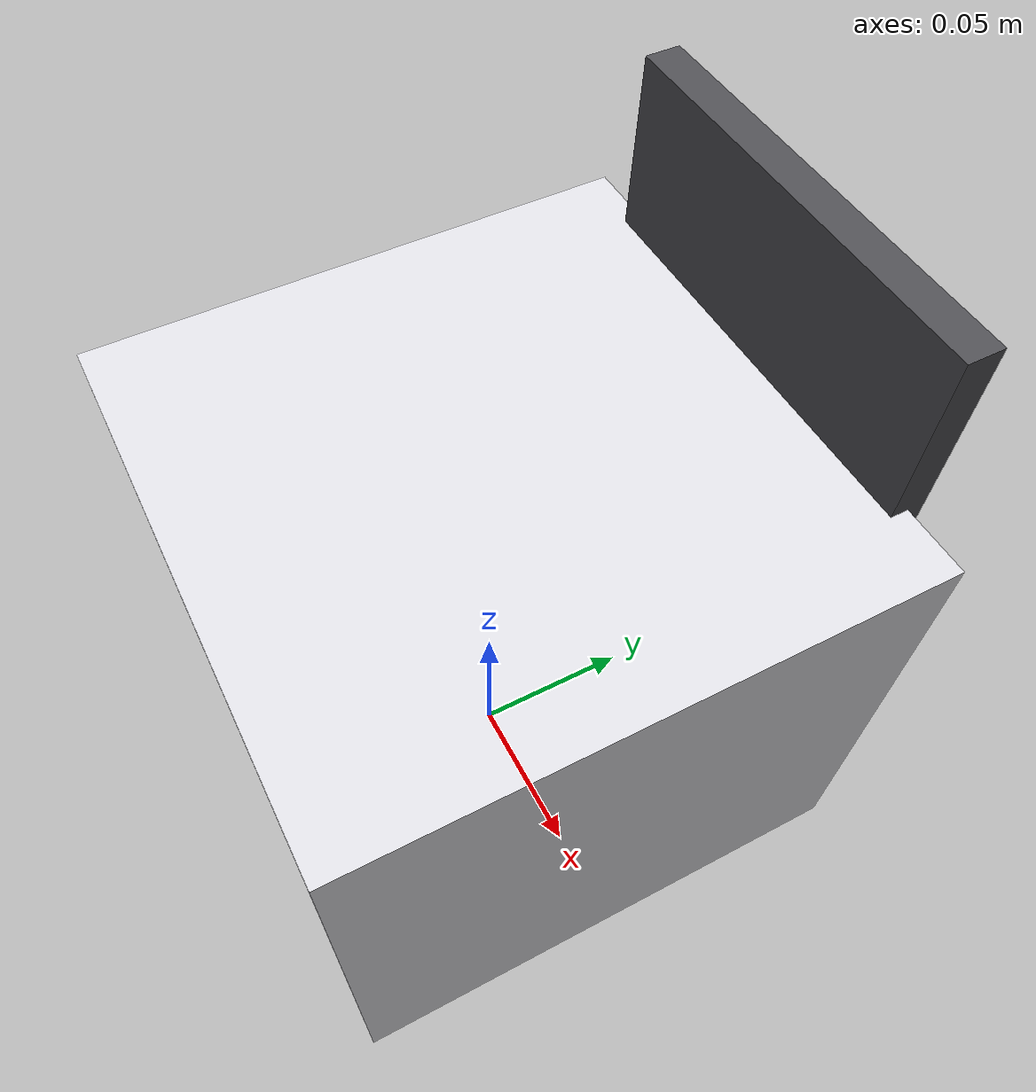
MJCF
<?xml version="1.0" encoding="utf-8"?>
<mujoco model="tga_dsc_analyzer">
  <compiler angle="radian" autolimits="true"/>
  <default>
    <default class="body"><geom contype="1" conaffinity="1"/></default>
  </default>
  <worldbody>
    <body name="base">
      <geom type="box" size="0.08 0.08 0.07" pos="0 0 0.07" rgba="0.85 0.85 0.87 1" class="body"/>
      <geom type="box" size="0.024 0.004 0.0175" pos="-0.04 -0.07200000000000001 0.10500000000000001" rgba="0.9 0.4 0.1 1" class="body"/>
      <body name="furnace_lid" pos="0 0.08 0.14">
        <joint name="furnace_lid_joint" type="hinge" axis="1 0 0" range="0 1.6" damping="0.4" frictionloss="0.3"/>
  <geom type="box" size="0.06 0.005 0.05" pos="0 0 0" rgba="0.3 0.3 0.32 1" class="body"/>
      </body>
    </body>
  </worldbody>
</mujoco>
